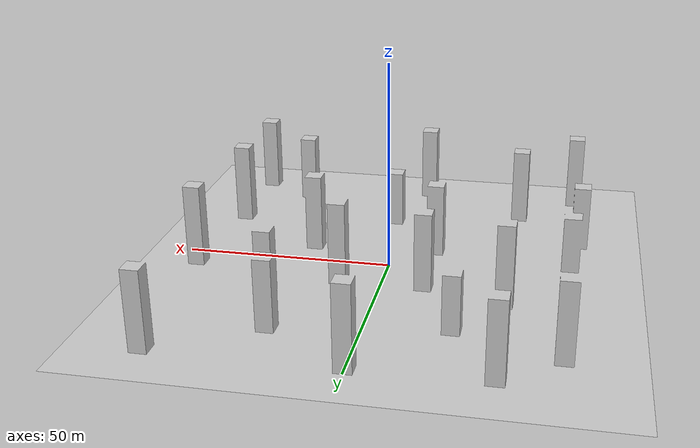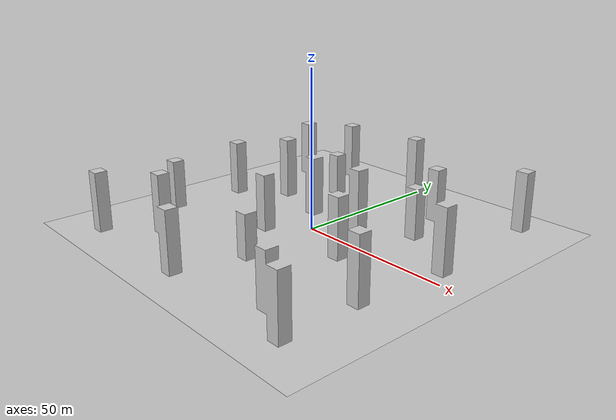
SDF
<?xml version="1.0" ?>
<sdf version="1.9">
  <model name="basic_2">
    <static>true</static>
    <link name="link">
      <collision name="collision">
        <geometry>
          <mesh>
            <uri>model://basic_2/meshes/basic_2.stl</uri>
          </mesh>
        </geometry>
      </collision>

      <!-- Attach collision sensor -->
      <sensor name="contact_sensor" type="contact">
        <always_on>1</always_on>
        <update_rate>30</update_rate>
        <contact>
          <collision>collision</collision>
        </contact>
      </sensor>

      <visual name="visual">
        <geometry>
          <mesh>
            <uri>model://basic_2/meshes/basic_2.stl</uri>
          </mesh>
        </geometry>
        <material>
            <ambient>0.8 0.8 0.8 1</ambient>
            <diffuse>0.8 0.8 0.8 1</diffuse>
            <specular>0.8 0.8 0.8 1</specular>
        </material>
      </visual>
    </link>
  </model>
</sdf>
